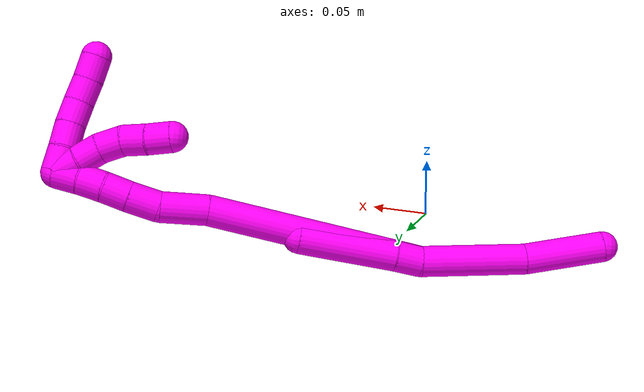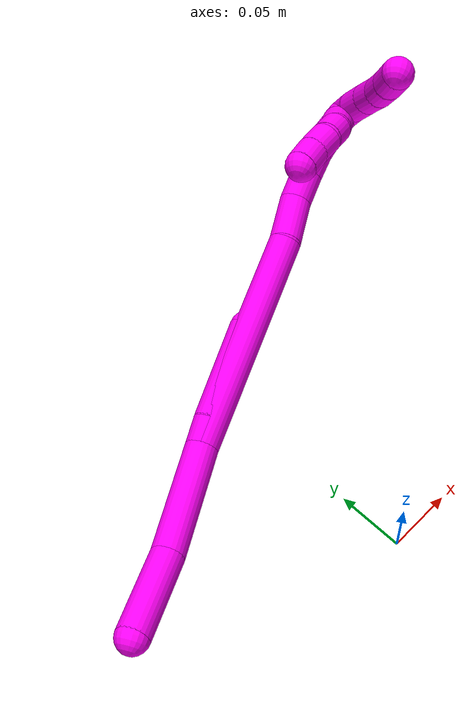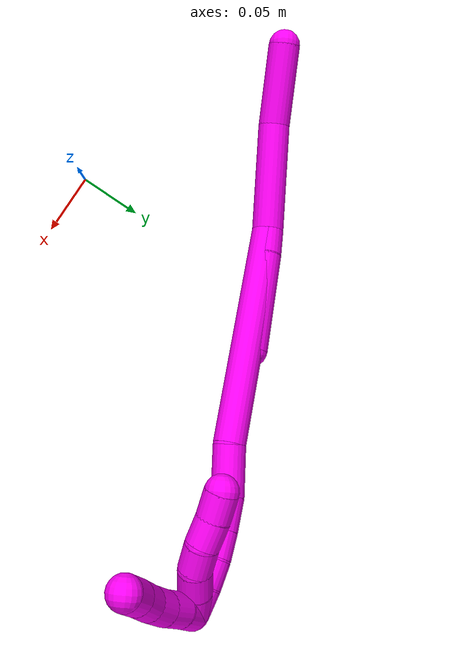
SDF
<sdf version="1.7">
 <world name="default">
  <model name="10">
   <static>0</static>
   <link name="10">
    <collision name="collision-cylinder-e_1_2_8">
     <pose>0.004341 -0.003447 -0.042527 3.06071 0.101394 1.79525</pose>
     <geometry><cylinder><radius>0.0125</radius><length>0.085774</length></cylinder></geometry>
     <surface>
      <friction><ode><mu>1.16</mu><mu2>1.16</mu2><slip1>0</slip1><slip2>0</slip2></ode></friction>
      <contact><ode><kp>1e+06</kp><kd>1</kd><max_vel>0</max_vel><min_depth>0.001</min_depth></ode></contact>
     </surface>
    </collision>
    <visual name="visual-cylinder-e_1_2_8">
     <pose>0.004341 -0.003447 -0.042527 3.06071 0.101394 1.79525</pose>
     <geometry><cylinder><radius>0.0125</radius><length>0.085774</length></cylinder></geometry>
     <material><ambient>1 0 0.964706 1</ambient></material>
    </visual>
    <collision name="collision-cylinder-e_2_8_6">
     <pose>0.014217 -0.014479 -0.115764 2.89946 0.17323 1.23974</pose>
     <geometry><cylinder><radius>0.0125</radius><length>0.064226</length></cylinder></geometry>
     <surface>
      <friction><ode><mu>1.16</mu><mu2>1.16</mu2><slip1>0</slip1><slip2>0</slip2></ode></friction>
      <contact><ode><kp>1e+06</kp><kd>1</kd><max_vel>0</max_vel><min_depth>0.001</min_depth></ode></contact>
     </surface>
    </collision>
    <visual name="visual-cylinder-e_2_8_6">
     <pose>0.014217 -0.014479 -0.115764 2.89946 0.17323 1.23974</pose>
     <geometry><cylinder><radius>0.0125</radius><length>0.064226</length></cylinder></geometry>
     <material><ambient>1 0 0.964706 1</ambient></material>
    </visual>
    <collision name="collision-cylinder-e_1_2_9">
     <pose>0.001016 -0.000613 0.010555 0.057995 0.095848 0.002782</pose>
     <geometry><cylinder><radius>0.0125</radius><length>0.021243</length></cylinder></geometry>
     <surface>
      <friction><ode><mu>1.16</mu><mu2>1.16</mu2><slip1>0</slip1><slip2>0</slip2></ode></friction>
      <contact><ode><kp>1e+06</kp><kd>1</kd><max_vel>0</max_vel><min_depth>0.001</min_depth></ode></contact>
     </surface>
    </collision>
    <visual name="visual-cylinder-e_1_2_9">
     <pose>0.001016 -0.000613 0.010555 0.057995 0.095848 0.002782</pose>
     <geometry><cylinder><radius>0.0125</radius><length>0.021243</length></cylinder></geometry>
     <material><ambient>1 0 0.964706 1</ambient></material>
    </visual>
    <collision name="collision-cylinder-e_2_9_5">
     <pose>0.00561 -0.000591 0.060321 -0.016182 0.090968 -0.000737</pose>
     <geometry><cylinder><radius>0.0125</radius><length>0.078757</length></cylinder></geometry>
     <surface>
      <friction><ode><mu>1.16</mu><mu2>1.16</mu2><slip1>0</slip1><slip2>0</slip2></ode></friction>
      <contact><ode><kp>1e+06</kp><kd>1</kd><max_vel>0</max_vel><min_depth>0.001</min_depth></ode></contact>
     </surface>
    </collision>
    <visual name="visual-cylinder-e_2_9_5">
     <pose>0.00561 -0.000591 0.060321 -0.016182 0.090968 -0.000737</pose>
     <geometry><cylinder><radius>0.0125</radius><length>0.078757</length></cylinder></geometry>
     <material><ambient>1 0 0.964706 1</ambient></material>
    </visual>
    <collision name="collision-cylinder-e_1_2_10">
     <pose>0.012754 0.000216 0.086573 -0.002491 0.146266 -0.000183</pose>
     <geometry><cylinder><radius>0.0125</radius><length>0.175016</length></cylinder></geometry>
     <surface>
      <friction><ode><mu>1.16</mu><mu2>1.16</mu2><slip1>0</slip1><slip2>0</slip2></ode></friction>
      <contact><ode><kp>1e+06</kp><kd>1</kd><max_vel>0</max_vel><min_depth>0.001</min_depth></ode></contact>
     </surface>
    </collision>
    <visual name="visual-cylinder-e_1_2_10">
     <pose>0.012754 0.000216 0.086573 -0.002491 0.146266 -0.000183</pose>
     <geometry><cylinder><radius>0.0125</radius><length>0.175016</length></cylinder></geometry>
     <material><ambient>1 0 0.964706 1</ambient></material>
    </visual>
    <collision name="collision-cylinder-e_2_10_11">
     <pose>0.02453 0.00035 0.192472 0.004206 -0.050567 -0.000106</pose>
     <geometry><cylinder><radius>0.0125</radius><length>0.0387</length></cylinder></geometry>
     <surface>
      <friction><ode><mu>1.16</mu><mu2>1.16</mu2><slip1>0</slip1><slip2>0</slip2></ode></friction>
      <contact><ode><kp>1e+06</kp><kd>1</kd><max_vel>0</max_vel><min_depth>0.001</min_depth></ode></contact>
     </surface>
    </collision>
    <visual name="visual-cylinder-e_2_10_11">
     <pose>0.02453 0.00035 0.192472 0.004206 -0.050567 -0.000106</pose>
     <geometry><cylinder><radius>0.0125</radius><length>0.0387</length></cylinder></geometry>
     <material><ambient>1 0 0.964706 1</ambient></material>
    </visual>
    <collision name="collision-cylinder-e_3_11_12">
     <pose>0.026334 -0.000279 0.224078 0.044593 0.222614 0.004985</pose>
     <geometry><cylinder><radius>0.0125</radius><length>0.025209</length></cylinder></geometry>
     <surface>
      <friction><ode><mu>1.16</mu><mu2>1.16</mu2><slip1>0</slip1><slip2>0</slip2></ode></friction>
      <contact><ode><kp>1e+06</kp><kd>1</kd><max_vel>0</max_vel><min_depth>0.001</min_depth></ode></contact>
     </surface>
    </collision>
    <visual name="visual-cylinder-e_3_11_12">
     <pose>0.026334 -0.000279 0.224078 0.044593 0.222614 0.004985</pose>
     <geometry><cylinder><radius>0.0125</radius><length>0.025209</length></cylinder></geometry>
     <material><ambient>1 0 0.964706 1</ambient></material>
    </visual>
    <collision name="collision-cylinder-e_4_12_13">
     <pose>0.031961 -0.001139 0.246201 0.031715 0.281201 0.004489</pose>
     <geometry><cylinder><radius>0.0125</radius><length>0.020498</length></cylinder></geometry>
     <surface>
      <friction><ode><mu>1.16</mu><mu2>1.16</mu2><slip1>0</slip1><slip2>0</slip2></ode></friction>
      <contact><ode><kp>1e+06</kp><kd>1</kd><max_vel>0</max_vel><min_depth>0.001</min_depth></ode></contact>
     </surface>
    </collision>
    <visual name="visual-cylinder-e_4_12_13">
     <pose>0.031961 -0.001139 0.246201 0.031715 0.281201 0.004489</pose>
     <geometry><cylinder><radius>0.0125</radius><length>0.020498</length></cylinder></geometry>
     <material><ambient>1 0 0.964706 1</ambient></material>
    </visual>
    <collision name="collision-cylinder-e_5_13_14">
     <pose>0.037726 -0.000423 0.265639 -0.106821 0.293852 -0.015823</pose>
     <geometry><cylinder><radius>0.0125</radius><length>0.020168</length></cylinder></geometry>
     <surface>
      <friction><ode><mu>1.16</mu><mu2>1.16</mu2><slip1>0</slip1><slip2>0</slip2></ode></friction>
      <contact><ode><kp>1e+06</kp><kd>1</kd><max_vel>0</max_vel><min_depth>0.001</min_depth></ode></contact>
     </surface>
    </collision>
    <visual name="visual-cylinder-e_5_13_14">
     <pose>0.037726 -0.000423 0.265639 -0.106821 0.293852 -0.015823</pose>
     <geometry><cylinder><radius>0.0125</radius><length>0.020168</length></cylinder></geometry>
     <material><ambient>1 0 0.964706 1</ambient></material>
    </visual>
    <collision name="collision-cylinder-e_6_14_1">
     <pose>0.043506 0.002723 0.2848 -0.217841 0.283997 -0.031264</pose>
     <geometry><cylinder><radius>0.0125</radius><length>0.020409</length></cylinder></geometry>
     <surface>
      <friction><ode><mu>1.16</mu><mu2>1.16</mu2><slip1>0</slip1><slip2>0</slip2></ode></friction>
      <contact><ode><kp>1e+06</kp><kd>1</kd><max_vel>0</max_vel><min_depth>0.001</min_depth></ode></contact>
     </surface>
    </collision>
    <visual name="visual-cylinder-e_6_14_1">
     <pose>0.043506 0.002723 0.2848 -0.217841 0.283997 -0.031264</pose>
     <geometry><cylinder><radius>0.0125</radius><length>0.020409</length></cylinder></geometry>
     <material><ambient>1 0 0.964706 1</ambient></material>
    </visual>
    <collision name="collision-cylinder-e_1_1_15">
     <pose>0.050183 0.000254 0.28634 2.62229 0.391735 1.28302</pose>
     <geometry><cylinder><radius>0.0125</radius><length>0.02</length></cylinder></geometry>
     <surface>
      <friction><ode><mu>1.16</mu><mu2>1.16</mu2><slip1>0</slip1><slip2>0</slip2></ode></friction>
      <contact><ode><kp>1e+06</kp><kd>1</kd><max_vel>0</max_vel><min_depth>0.001</min_depth></ode></contact>
     </surface>
    </collision>
    <visual name="visual-cylinder-e_1_1_15">
     <pose>0.050183 0.000254 0.28634 2.62229 0.391735 1.28302</pose>
     <geometry><cylinder><radius>0.0125</radius><length>0.02</length></cylinder></geometry>
     <material><ambient>1 0 0.964706 1</ambient></material>
    </visual>
    <collision name="collision-cylinder-e_2_15_16">
     <pose>0.058726 -0.008122 0.270358 2.69728 0.492047 1.67647</pose>
     <geometry><cylinder><radius>0.0125</radius><length>0.02</length></cylinder></geometry>
     <surface>
      <friction><ode><mu>1.16</mu><mu2>1.16</mu2><slip1>0</slip1><slip2>0</slip2></ode></friction>
      <contact><ode><kp>1e+06</kp><kd>1</kd><max_vel>0</max_vel><min_depth>0.001</min_depth></ode></contact>
     </surface>
    </collision>
    <visual name="visual-cylinder-e_2_15_16">
     <pose>0.058726 -0.008122 0.270358 2.69728 0.492047 1.67647</pose>
     <geometry><cylinder><radius>0.0125</radius><length>0.02</length></cylinder></geometry>
     <material><ambient>1 0 0.964706 1</ambient></material>
    </visual>
    <collision name="collision-cylinder-e_3_16_17">
     <pose>0.0655 -0.016487 0.253749 2.65496 0.206519 0.790941</pose>
     <geometry><cylinder><radius>0.0125</radius><length>0.02</length></cylinder></geometry>
     <surface>
      <friction><ode><mu>1.16</mu><mu2>1.16</mu2><slip1>0</slip1><slip2>0</slip2></ode></friction>
      <contact><ode><kp>1e+06</kp><kd>1</kd><max_vel>0</max_vel><min_depth>0.001</min_depth></ode></contact>
     </surface>
    </collision>
    <visual name="visual-cylinder-e_3_16_17">
     <pose>0.0655 -0.016487 0.253749 2.65496 0.206519 0.790941</pose>
     <geometry><cylinder><radius>0.0125</radius><length>0.02</length></cylinder></geometry>
     <material><ambient>1 0 0.964706 1</ambient></material>
    </visual>
    <collision name="collision-cylinder-e_4_17_18">
     <pose>0.067081 -0.024954 0.235897 2.74157 -0.047028 -0.230997</pose>
     <geometry><cylinder><radius>0.0125</radius><length>0.02</length></cylinder></geometry>
     <surface>
      <friction><ode><mu>1.16</mu><mu2>1.16</mu2><slip1>0</slip1><slip2>0</slip2></ode></friction>
      <contact><ode><kp>1e+06</kp><kd>1</kd><max_vel>0</max_vel><min_depth>0.001</min_depth></ode></contact>
     </surface>
    </collision>
    <visual name="visual-cylinder-e_4_17_18">
     <pose>0.067081 -0.024954 0.235897 2.74157 -0.047028 -0.230997</pose>
     <geometry><cylinder><radius>0.0125</radius><length>0.02</length></cylinder></geometry>
     <material><ambient>1 0 0.964706 1</ambient></material>
    </visual>
    <collision name="collision-cylinder-e_5_18_4">
     <pose>0.067007 -0.032323 0.21733 2.78597 0.039638 0.21971</pose>
     <geometry><cylinder><radius>0.0125</radius><length>0.02</length></cylinder></geometry>
     <surface>
      <friction><ode><mu>1.16</mu><mu2>1.16</mu2><slip1>0</slip1><slip2>0</slip2></ode></friction>
      <contact><ode><kp>1e+06</kp><kd>1</kd><max_vel>0</max_vel><min_depth>0.001</min_depth></ode></contact>
     </surface>
    </collision>
    <visual name="visual-cylinder-e_5_18_4">
     <pose>0.067007 -0.032323 0.21733 2.78597 0.039638 0.21971</pose>
     <geometry><cylinder><radius>0.0125</radius><length>0.02</length></cylinder></geometry>
     <material><ambient>1 0 0.964706 1</ambient></material>
    </visual>
    <collision name="collision-cylinder-e_1_1_19">
     <pose>0.055631 0.001542 0.292555 2.07248 1.18514 1.69901</pose>
     <geometry><cylinder><radius>0.0125</radius><length>0.02</length></cylinder></geometry>
     <surface>
      <friction><ode><mu>1.16</mu><mu2>1.16</mu2><slip1>0</slip1><slip2>0</slip2></ode></friction>
      <contact><ode><kp>1e+06</kp><kd>1</kd><max_vel>0</max_vel><min_depth>0.001</min_depth></ode></contact>
     </surface>
    </collision>
    <visual name="visual-cylinder-e_1_1_19">
     <pose>0.055631 0.001542 0.292555 2.07248 1.18514 1.69901</pose>
     <geometry><cylinder><radius>0.0125</radius><length>0.02</length></cylinder></geometry>
     <material><ambient>1 0 0.964706 1</ambient></material>
    </visual>
    <collision name="collision-cylinder-e_2_19_20">
     <pose>0.07456 -0.003934 0.289376 2.13251 1.31053 1.8955</pose>
     <geometry><cylinder><radius>0.0125</radius><length>0.02</length></cylinder></geometry>
     <surface>
      <friction><ode><mu>1.16</mu><mu2>1.16</mu2><slip1>0</slip1><slip2>0</slip2></ode></friction>
      <contact><ode><kp>1e+06</kp><kd>1</kd><max_vel>0</max_vel><min_depth>0.001</min_depth></ode></contact>
     </surface>
    </collision>
    <visual name="visual-cylinder-e_2_19_20">
     <pose>0.07456 -0.003934 0.289376 2.13251 1.31053 1.8955</pose>
     <geometry><cylinder><radius>0.0125</radius><length>0.02</length></cylinder></geometry>
     <material><ambient>1 0 0.964706 1</ambient></material>
    </visual>
    <collision name="collision-cylinder-e_3_20_21">
     <pose>0.093619 -0.00864 0.285697 2.31053 1.2214 2.01671</pose>
     <geometry><cylinder><radius>0.0125</radius><length>0.02</length></cylinder></geometry>
     <surface>
      <friction><ode><mu>1.16</mu><mu2>1.16</mu2><slip1>0</slip1><slip2>0</slip2></ode></friction>
      <contact><ode><kp>1e+06</kp><kd>1</kd><max_vel>0</max_vel><min_depth>0.001</min_depth></ode></contact>
     </surface>
    </collision>
    <visual name="visual-cylinder-e_3_20_21">
     <pose>0.093619 -0.00864 0.285697 2.31053 1.2214 2.01671</pose>
     <geometry><cylinder><radius>0.0125</radius><length>0.02</length></cylinder></geometry>
     <material><ambient>1 0 0.964706 1</ambient></material>
    </visual>
    <collision name="collision-cylinder-e_4_21_22">
     <pose>0.111842 -0.015027 0.280707 2.17846 1.08162 1.70934</pose>
     <geometry><cylinder><radius>0.0125</radius><length>0.02</length></cylinder></geometry>
     <surface>
      <friction><ode><mu>1.16</mu><mu2>1.16</mu2><slip1>0</slip1><slip2>0</slip2></ode></friction>
      <contact><ode><kp>1e+06</kp><kd>1</kd><max_vel>0</max_vel><min_depth>0.001</min_depth></ode></contact>
     </surface>
    </collision>
    <visual name="visual-cylinder-e_4_21_22">
     <pose>0.111842 -0.015027 0.280707 2.17846 1.08162 1.70934</pose>
     <geometry><cylinder><radius>0.0125</radius><length>0.02</length></cylinder></geometry>
     <material><ambient>1 0 0.964706 1</ambient></material>
    </visual>
    <collision name="collision-cylinder-e_5_22_3">
     <pose>0.129438 -0.023176 0.275859 2.03796 1.06945 1.53219</pose>
     <geometry><cylinder><radius>0.0125</radius><length>0.02</length></cylinder></geometry>
     <surface>
      <friction><ode><mu>1.16</mu><mu2>1.16</mu2><slip1>0</slip1><slip2>0</slip2></ode></friction>
      <contact><ode><kp>1e+06</kp><kd>1</kd><max_vel>0</max_vel><min_depth>0.001</min_depth></ode></contact>
     </surface>
    </collision>
    <visual name="visual-cylinder-e_5_22_3">
     <pose>0.129438 -0.023176 0.275859 2.03796 1.06945 1.53219</pose>
     <geometry><cylinder><radius>0.0125</radius><length>0.02</length></cylinder></geometry>
     <material><ambient>1 0 0.964706 1</ambient></material>
    </visual>
    <collision name="collision-sphere-3">
     <pose>0.138208 -0.027467 0.273695 0 -0 0</pose>
     <geometry><sphere><radius>0.0125</radius></sphere></geometry>
     <surface>
      <friction><ode><mu>1.16</mu><mu2>1.16</mu2><slip1>0</slip1><slip2>0</slip2></ode></friction>
      <contact><ode><kp>1e+06</kp><kd>1</kd><max_vel>0</max_vel><min_depth>0.001</min_depth></ode></contact>
     </surface>
    </collision>
    <visual name="visual-sphere-3">
     <pose>0.138208 -0.027467 0.273695 0 -0 0</pose>
     <geometry><sphere><radius>0.0125</radius></sphere></geometry>
     <material><ambient>1 0 0.964706 1</ambient></material>
    </visual>
    <collision name="collision-sphere-22">
     <pose>0.120669 -0.018885 0.278024 0 -0 0</pose>
     <geometry><sphere><radius>0.0125</radius></sphere></geometry>
     <surface>
      <friction><ode><mu>1.16</mu><mu2>1.16</mu2><slip1>0</slip1><slip2>0</slip2></ode></friction>
      <contact><ode><kp>1e+06</kp><kd>1</kd><max_vel>0</max_vel><min_depth>0.001</min_depth></ode></contact>
     </surface>
    </collision>
    <visual name="visual-sphere-22">
     <pose>0.120669 -0.018885 0.278024 0 -0 0</pose>
     <geometry><sphere><radius>0.0125</radius></sphere></geometry>
     <material><ambient>1 0 0.964706 1</ambient></material>
    </visual>
    <collision name="collision-sphere-21">
     <pose>0.103015 -0.011169 0.28339 0 -0 0</pose>
     <geometry><sphere><radius>0.0125</radius></sphere></geometry>
     <surface>
      <friction><ode><mu>1.16</mu><mu2>1.16</mu2><slip1>0</slip1><slip2>0</slip2></ode></friction>
      <contact><ode><kp>1e+06</kp><kd>1</kd><max_vel>0</max_vel><min_depth>0.001</min_depth></ode></contact>
     </surface>
    </collision>
    <visual name="visual-sphere-21">
     <pose>0.103015 -0.011169 0.28339 0 -0 0</pose>
     <geometry><sphere><radius>0.0125</radius></sphere></geometry>
     <material><ambient>1 0 0.964706 1</ambient></material>
    </visual>
    <collision name="collision-sphere-20">
     <pose>0.084223 -0.006112 0.288005 0 -0 0</pose>
     <geometry><sphere><radius>0.0125</radius></sphere></geometry>
     <surface>
      <friction><ode><mu>1.16</mu><mu2>1.16</mu2><slip1>0</slip1><slip2>0</slip2></ode></friction>
      <contact><ode><kp>1e+06</kp><kd>1</kd><max_vel>0</max_vel><min_depth>0.001</min_depth></ode></contact>
     </surface>
    </collision>
    <visual name="visual-sphere-20">
     <pose>0.084223 -0.006112 0.288005 0 -0 0</pose>
     <geometry><sphere><radius>0.0125</radius></sphere></geometry>
     <material><ambient>1 0 0.964706 1</ambient></material>
    </visual>
    <collision name="collision-sphere-19">
     <pose>0.064897 -0.001756 0.290746 0 -0 0</pose>
     <geometry><sphere><radius>0.0125</radius></sphere></geometry>
     <surface>
      <friction><ode><mu>1.16</mu><mu2>1.16</mu2><slip1>0</slip1><slip2>0</slip2></ode></friction>
      <contact><ode><kp>1e+06</kp><kd>1</kd><max_vel>0</max_vel><min_depth>0.001</min_depth></ode></contact>
     </surface>
    </collision>
    <visual name="visual-sphere-19">
     <pose>0.064897 -0.001756 0.290746 0 -0 0</pose>
     <geometry><sphere><radius>0.0125</radius></sphere></geometry>
     <material><ambient>1 0 0.964706 1</ambient></material>
    </visual>
    <collision name="collision-sphere-10">
     <pose>0.025508 0.000431 0.173146 0 -0 0</pose>
     <geometry><sphere><radius>0.0125</radius></sphere></geometry>
     <surface>
      <friction><ode><mu>1.16</mu><mu2>1.16</mu2><slip1>0</slip1><slip2>0</slip2></ode></friction>
      <contact><ode><kp>1e+06</kp><kd>1</kd><max_vel>0</max_vel><min_depth>0.001</min_depth></ode></contact>
     </surface>
    </collision>
    <visual name="visual-sphere-10">
     <pose>0.025508 0.000431 0.173146 0 -0 0</pose>
     <geometry><sphere><radius>0.0125</radius></sphere></geometry>
     <material><ambient>1 0 0.964706 1</ambient></material>
    </visual>
    <collision name="collision-sphere-5">
     <pose>0.009187 4.3e-05 0.099531 0 -0 0</pose>
     <geometry><sphere><radius>0.0125</radius></sphere></geometry>
     <surface>
      <friction><ode><mu>1.16</mu><mu2>1.16</mu2><slip1>0</slip1><slip2>0</slip2></ode></friction>
      <contact><ode><kp>1e+06</kp><kd>1</kd><max_vel>0</max_vel><min_depth>0.001</min_depth></ode></contact>
     </surface>
    </collision>
    <visual name="visual-sphere-5">
     <pose>0.009187 4.3e-05 0.099531 0 -0 0</pose>
     <geometry><sphere><radius>0.0125</radius></sphere></geometry>
     <material><ambient>1 0 0.964706 1</ambient></material>
    </visual>
    <collision name="collision-sphere-6">
     <pose>0.019752 -0.022064 -0.146474 0 -0 0</pose>
     <geometry><sphere><radius>0.0125</radius></sphere></geometry>
     <surface>
      <friction><ode><mu>1.16</mu><mu2>1.16</mu2><slip1>0</slip1><slip2>0</slip2></ode></friction>
      <contact><ode><kp>1e+06</kp><kd>1</kd><max_vel>0</max_vel><min_depth>0.001</min_depth></ode></contact>
     </surface>
    </collision>
    <visual name="visual-sphere-6">
     <pose>0.019752 -0.022064 -0.146474 0 -0 0</pose>
     <geometry><sphere><radius>0.0125</radius></sphere></geometry>
     <material><ambient>1 0 0.964706 1</ambient></material>
    </visual>
    <collision name="collision-sphere-9">
     <pose>0.002033 -0.001226 0.02111 0 -0 0</pose>
     <geometry><sphere><radius>0.0125</radius></sphere></geometry>
     <surface>
      <friction><ode><mu>1.16</mu><mu2>1.16</mu2><slip1>0</slip1><slip2>0</slip2></ode></friction>
      <contact><ode><kp>1e+06</kp><kd>1</kd><max_vel>0</max_vel><min_depth>0.001</min_depth></ode></contact>
     </surface>
    </collision>
    <visual name="visual-sphere-9">
     <pose>0.002033 -0.001226 0.02111 0 -0 0</pose>
     <geometry><sphere><radius>0.0125</radius></sphere></geometry>
     <material><ambient>1 0 0.964706 1</ambient></material>
    </visual>
    <collision name="collision-sphere-2">
     <geometry><sphere><radius>0.0125</radius></sphere></geometry>
     <surface>
      <friction><ode><mu>1.16</mu><mu2>1.16</mu2><slip1>0</slip1><slip2>0</slip2></ode></friction>
      <contact><ode><kp>1e+06</kp><kd>1</kd><max_vel>0</max_vel><min_depth>0.001</min_depth></ode></contact>
     </surface>
    </collision>
    <visual name="visual-sphere-2">
     <geometry><sphere><radius>0.0125</radius></sphere></geometry>
     <material><ambient>1 0 0.964706 1</ambient></material>
    </visual>
    <collision name="collision-sphere-8">
     <pose>0.008682 -0.006894 -0.085055 0 -0 0</pose>
     <geometry><sphere><radius>0.0125</radius></sphere></geometry>
     <surface>
      <friction><ode><mu>1.16</mu><mu2>1.16</mu2><slip1>0</slip1><slip2>0</slip2></ode></friction>
      <contact><ode><kp>1e+06</kp><kd>1</kd><max_vel>0</max_vel><min_depth>0.001</min_depth></ode></contact>
     </surface>
    </collision>
    <visual name="visual-sphere-8">
     <pose>0.008682 -0.006894 -0.085055 0 -0 0</pose>
     <geometry><sphere><radius>0.0125</radius></sphere></geometry>
     <material><ambient>1 0 0.964706 1</ambient></material>
    </visual>
    <collision name="collision-sphere-11">
     <pose>0.023552 0.000269 0.211797 0 -0 0</pose>
     <geometry><sphere><radius>0.0125</radius></sphere></geometry>
     <surface>
      <friction><ode><mu>1.16</mu><mu2>1.16</mu2><slip1>0</slip1><slip2>0</slip2></ode></friction>
      <contact><ode><kp>1e+06</kp><kd>1</kd><max_vel>0</max_vel><min_depth>0.001</min_depth></ode></contact>
     </surface>
    </collision>
    <visual name="visual-sphere-11">
     <pose>0.023552 0.000269 0.211797 0 -0 0</pose>
     <geometry><sphere><radius>0.0125</radius></sphere></geometry>
     <material><ambient>1 0 0.964706 1</ambient></material>
    </visual>
    <collision name="collision-sphere-12">
     <pose>0.029117 -0.000827 0.23636 0 -0 0</pose>
     <geometry><sphere><radius>0.0125</radius></sphere></geometry>
     <surface>
      <friction><ode><mu>1.16</mu><mu2>1.16</mu2><slip1>0</slip1><slip2>0</slip2></ode></friction>
      <contact><ode><kp>1e+06</kp><kd>1</kd><max_vel>0</max_vel><min_depth>0.001</min_depth></ode></contact>
     </surface>
    </collision>
    <visual name="visual-sphere-12">
     <pose>0.029117 -0.000827 0.23636 0 -0 0</pose>
     <geometry><sphere><radius>0.0125</radius></sphere></geometry>
     <material><ambient>1 0 0.964706 1</ambient></material>
    </visual>
    <collision name="collision-sphere-13">
     <pose>0.034806 -0.001452 0.256043 0 -0 0</pose>
     <geometry><sphere><radius>0.0125</radius></sphere></geometry>
     <surface>
      <friction><ode><mu>1.16</mu><mu2>1.16</mu2><slip1>0</slip1><slip2>0</slip2></ode></friction>
      <contact><ode><kp>1e+06</kp><kd>1</kd><max_vel>0</max_vel><min_depth>0.001</min_depth></ode></contact>
     </surface>
    </collision>
    <visual name="visual-sphere-13">
     <pose>0.034806 -0.001452 0.256043 0 -0 0</pose>
     <geometry><sphere><radius>0.0125</radius></sphere></geometry>
     <material><ambient>1 0 0.964706 1</ambient></material>
    </visual>
    <collision name="collision-sphere-14">
     <pose>0.040647 0.000606 0.275236 0 -0 0</pose>
     <geometry><sphere><radius>0.0125</radius></sphere></geometry>
     <surface>
      <friction><ode><mu>1.16</mu><mu2>1.16</mu2><slip1>0</slip1><slip2>0</slip2></ode></friction>
      <contact><ode><kp>1e+06</kp><kd>1</kd><max_vel>0</max_vel><min_depth>0.001</min_depth></ode></contact>
     </surface>
    </collision>
    <visual name="visual-sphere-14">
     <pose>0.040647 0.000606 0.275236 0 -0 0</pose>
     <geometry><sphere><radius>0.0125</radius></sphere></geometry>
     <material><ambient>1 0 0.964706 1</ambient></material>
    </visual>
    <collision name="collision-sphere-1">
     <pose>0.046365 0.004841 0.294364 0 -0 0</pose>
     <geometry><sphere><radius>0.0125</radius></sphere></geometry>
     <surface>
      <friction><ode><mu>1.16</mu><mu2>1.16</mu2><slip1>0</slip1><slip2>0</slip2></ode></friction>
      <contact><ode><kp>1e+06</kp><kd>1</kd><max_vel>0</max_vel><min_depth>0.001</min_depth></ode></contact>
     </surface>
    </collision>
    <visual name="visual-sphere-1">
     <pose>0.046365 0.004841 0.294364 0 -0 0</pose>
     <geometry><sphere><radius>0.0125</radius></sphere></geometry>
     <material><ambient>1 0 0.964706 1</ambient></material>
    </visual>
    <collision name="collision-sphere-18">
     <pose>0.066611 -0.028844 0.226697 0 -0 0</pose>
     <geometry><sphere><radius>0.0125</radius></sphere></geometry>
     <surface>
      <friction><ode><mu>1.16</mu><mu2>1.16</mu2><slip1>0</slip1><slip2>0</slip2></ode></friction>
      <contact><ode><kp>1e+06</kp><kd>1</kd><max_vel>0</max_vel><min_depth>0.001</min_depth></ode></contact>
     </surface>
    </collision>
    <visual name="visual-sphere-18">
     <pose>0.066611 -0.028844 0.226697 0 -0 0</pose>
     <geometry><sphere><radius>0.0125</radius></sphere></geometry>
     <material><ambient>1 0 0.964706 1</ambient></material>
    </visual>
    <collision name="collision-sphere-15">
     <pose>0.054001 -0.004333 0.278316 0 -0 0</pose>
     <geometry><sphere><radius>0.0125</radius></sphere></geometry>
     <surface>
      <friction><ode><mu>1.16</mu><mu2>1.16</mu2><slip1>0</slip1><slip2>0</slip2></ode></friction>
      <contact><ode><kp>1e+06</kp><kd>1</kd><max_vel>0</max_vel><min_depth>0.001</min_depth></ode></contact>
     </surface>
    </collision>
    <visual name="visual-sphere-15">
     <pose>0.054001 -0.004333 0.278316 0 -0 0</pose>
     <geometry><sphere><radius>0.0125</radius></sphere></geometry>
     <material><ambient>1 0 0.964706 1</ambient></material>
    </visual>
    <collision name="collision-sphere-16">
     <pose>0.06345 -0.01191 0.2624 0 -0 0</pose>
     <geometry><sphere><radius>0.0125</radius></sphere></geometry>
     <surface>
      <friction><ode><mu>1.16</mu><mu2>1.16</mu2><slip1>0</slip1><slip2>0</slip2></ode></friction>
      <contact><ode><kp>1e+06</kp><kd>1</kd><max_vel>0</max_vel><min_depth>0.001</min_depth></ode></contact>
     </surface>
    </collision>
    <visual name="visual-sphere-16">
     <pose>0.06345 -0.01191 0.2624 0 -0 0</pose>
     <geometry><sphere><radius>0.0125</radius></sphere></geometry>
     <material><ambient>1 0 0.964706 1</ambient></material>
    </visual>
    <collision name="collision-sphere-17">
     <pose>0.067551 -0.021064 0.245098 0 -0 0</pose>
     <geometry><sphere><radius>0.0125</radius></sphere></geometry>
     <surface>
      <friction><ode><mu>1.16</mu><mu2>1.16</mu2><slip1>0</slip1><slip2>0</slip2></ode></friction>
      <contact><ode><kp>1e+06</kp><kd>1</kd><max_vel>0</max_vel><min_depth>0.001</min_depth></ode></contact>
     </surface>
    </collision>
    <visual name="visual-sphere-17">
     <pose>0.067551 -0.021064 0.245098 0 -0 0</pose>
     <geometry><sphere><radius>0.0125</radius></sphere></geometry>
     <material><ambient>1 0 0.964706 1</ambient></material>
    </visual>
    <collision name="collision-sphere-4">
     <pose>0.067403 -0.035802 0.207963 0 -0 0</pose>
     <geometry><sphere><radius>0.0125</radius></sphere></geometry>
     <surface>
      <friction><ode><mu>1.16</mu><mu2>1.16</mu2><slip1>0</slip1><slip2>0</slip2></ode></friction>
      <contact><ode><kp>1e+06</kp><kd>1</kd><max_vel>0</max_vel><min_depth>0.001</min_depth></ode></contact>
     </surface>
    </collision>
    <visual name="visual-sphere-4">
     <pose>0.067403 -0.035802 0.207963 0 -0 0</pose>
     <geometry><sphere><radius>0.0125</radius></sphere></geometry>
     <material><ambient>1 0 0.964706 1</ambient></material>
    </visual>
    <inertial>
     <pose>0.03116 -0.005113 0.12282 0 -0 0</pose>
     <mass>0.75</mass>
     <inertia>
      <ixx>0.000604</ixx>
      <ixy>0</ixy>
      <ixz>0</ixz>
      <iyy>0.000597</iyy>
      <iyz>0</iyz>
      <izz>-6.5e-05</izz>
     </inertia>
    </inertial>
   </link>
   <pose>-0.046858 0.148079 0.013975 -1.35637 -0.74727 -1.20513</pose>
  </model>
 </world>
</sdf>
